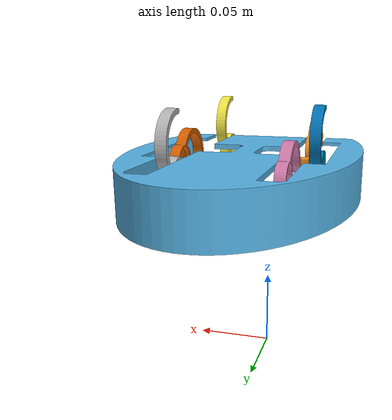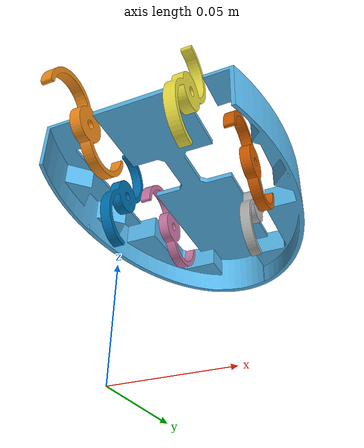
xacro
<?xml version="1.0"?>
<robot name="mobileRobot" xmlns:xacro="http://www.ros.org/wiki/xacro">

<xacro:property name="PI" value="3.1415926535897931"/>
<xacro:property name="bodymass" value="1"/>
<xacro:property name="legmass" value="0.5"/>
<xacro:include filename="$(find p8_gazebo)/robot_model/mobile/mobile.gazebo"/>
<xacro:property name="ixx" value="0.11"/>
<xacro:property name="ixy" value="0"/>
<xacro:property name="ixz" value="0"/>
<xacro:property name="iyy" value="0.11"/>
<xacro:property name="iyz" value="0"/>
<xacro:property name="izz" value="0.11"/>

<link name="world"/>
<joint name="to_world" type="floating">
    <parent link="world"/>
    <child link="body"/>
</joint>
<link name="body">
	<collision>
		<origin xyz="0 0 0.15" rpy="0 0 0" />
		<geometry><mesh filename="package://p8_gazebo/robot_model/mobile/top.dae"/></geometry>
	</collision>
	<visual>
		<origin xyz="0 0 0.15" rpy="0 0 0" />
		<geometry><mesh filename="package://p8_gazebo/robot_model/mobile/top.dae"/></geometry>
	</visual>
	<inertial>
		<origin xyz="0 0 0.15" rpy="0 0 0" />
		<mass value="${bodymass}"/>
		<inertia ixx="1.005" ixy="0.0" ixz="0.0" iyy="1.005" iyz="0.0" izz="1.005"/>
	</inertial>
</link>
<link name="left_leg_b"> <collision> <origin xyz="-0 -0 0" rpy="${PI/2} ${PI} 0"/>
		<geometry><mesh filename="package://p8_gazebo/robot_model/mobile/leftleg.dae"/></geometry>
	</collision>
	<visual>
		<origin xyz="-0 -0 0" rpy="${PI/2} ${PI} 0"/>
		<geometry><mesh filename="package://p8_gazebo/robot_model/mobile/leftleg.dae"/></geometry>
		<material name="orange"/>
	</visual>
	<inertial>
		<origin xyz="-0 -0 0" rpy="${PI/2} ${PI} 0"/>
		<mass value="${legmass}"/>
		<inertia ixx="${ixx}" ixy="${ixy}" ixz="${ixz}" iyy="${iyy}" iyz="${iyz}" izz="${izz}"/>
	</inertial>
</link>
<joint name="left_b" type="continuous">
	<parent link="body"/>
	<child link="left_leg_b"/>
	<origin xyz="-0.025 0 0.14" rpy="0 0 0"/>
	<axis xyz="1 0 0"/>
	<dynamics damping="0.7"/>
</joint>

<link name="right_leg_b">
	<collision>
		<origin xyz="0 -0 0" rpy="0 ${PI} 0"/>
		<geometry><mesh filename="package://p8_gazebo/robot_model/mobile/leftleg.dae"/></geometry>
	</collision>
	<visual>
		<origin xyz="0 -0 0" rpy="0 ${PI} 0"/>
		<geometry><mesh filename="package://p8_gazebo/robot_model/mobile/leftleg.dae"/></geometry>
	</visual>
	<inertial>
		<origin xyz="0 -0 0" rpy="0 ${PI} 0"/>
		<mass value="${legmass}"/>
		<inertia ixx="${ixx}" ixy="${ixy}" ixz="${ixz}" iyy="${iyy}" iyz="${iyz}" izz="${izz}"/>
	</inertial>
</link>
<joint name="right_b" type="continuous">
	<parent link="body"/>
	<child link="right_leg_b"/>
	<origin xyz="0.032 0 0.14" rpy="0 0 0"/>
	<axis xyz="1 0 0"/>
	<dynamics damping="0.7"/>
</joint>

<link name="left_leg_m">
	<collision>
		<origin xyz="-0 0 0" rpy="0 ${PI} 0"/>
		<geometry><mesh filename="package://p8_gazebo/robot_model/mobile/leftleg.dae"/></geometry>
	</collision>
	<visual>
		<origin xyz="-0 0 0" rpy="0 ${PI} 0"/>
		<geometry><mesh filename="package://p8_gazebo/robot_model/mobile/leftleg.dae"/></geometry>
	</visual>
	<inertial>
		<origin xyz="-0 0 0" rpy="0 ${PI} 0"/>
		<mass value="${legmass}"/>
		<inertia ixx="${ixx}" ixy="${ixy}" ixz="${ixz}" iyy="${iyy}" iyz="${iyz}" izz="${izz}"/>
	</inertial>
</link>
<joint name="left_m" type="continuous">
	<parent link="body"/>
	<child link="left_leg_m"/>
	<origin xyz="-0.037 0.061 0.14" rpy="0 0 0"/>
	<axis xyz="1 0 0"/>
	<dynamics damping="0.7"/>
</joint>

<link name="right_leg_m">
	<collision>
		<origin xyz="0 0 0" rpy="${PI/2} ${PI} 0"/>
		<geometry><mesh filename="package://p8_gazebo/robot_model/mobile/leftleg.dae"/></geometry>
	</collision>
	<visual>
		<origin xyz="0 0 0" rpy="${PI/2} ${PI} 0"/>
		<geometry><mesh filename="package://p8_gazebo/robot_model/mobile/leftleg.dae"/></geometry>
	</visual>
	<inertial>
		<origin xyz="0 0 0" rpy="${PI/2} ${PI} 0"/>
		<mass value="${legmass}"/>
		<inertia ixx="${ixx}" ixy="${ixy}" ixz="${ixz}" iyy="${iyy}" iyz="${iyz}" izz="${izz}"/>
	</inertial>
</link>
<joint name="right_m" type="continuous">
	<parent link="body"/>
	<child link="right_leg_m"/>
	<origin xyz="0.044 0.061 0.14" rpy="0 0 0"/>
	<axis xyz="1 0 0"/>
	<dynamics damping="0.7"/>
</joint>

<link name="left_leg_f">
	<collision>
		<origin xyz="-0 0 0" rpy="${PI/2} ${PI} 0"/>
		<geometry><mesh filename="package://p8_gazebo/robot_model/mobile/leftleg.dae"/></geometry>
	</collision>
	<visual>
		<origin xyz="-0 0 0" rpy="${PI/2} ${PI} 0"/>
		<geometry><mesh filename="package://p8_gazebo/robot_model/mobile/leftleg.dae"/></geometry>
	</visual>
	<inertial>
		<origin xyz="-0 0 0" rpy="${PI/2} ${PI} 0"/>
		<mass value="${legmass}"/>
		<inertia ixx="${ixx}" ixy="${ixy}" ixz="${ixz}" iyy="${iyy}" iyz="${iyz}" izz="${izz}"/>
	</inertial>
</link>
<joint name="left_f" type="continuous">
	<parent link="body"/>
	<child link="left_leg_f"/>
	<origin xyz="-0.025 0.101 0.14" rpy="0 0 0"/>
	<axis xyz="1 0 0"/>
	<dynamics damping="0.7"/>
</joint>

<link name="right_leg_f">
	<collision>
		<origin xyz="0 0 0" rpy="0 ${PI} 0"/>
		<geometry><mesh filename="package://p8_gazebo/robot_model/mobile/leftleg.dae"/></geometry>
	</collision>
	<visual>
		<origin xyz="0 0 0" rpy="0 ${PI} 0"/>
		<geometry><mesh filename="package://p8_gazebo/robot_model/mobile/leftleg.dae"/></geometry>
	</visual>
	<inertial>
		<origin xyz="0 0 0" rpy="0 ${PI} 0"/>
		<mass value="${legmass}"/>
		<inertia ixx="${ixx}" ixy="${ixy}" ixz="${ixz}" iyy="${iyy}" iyz="${iyz}" izz="${izz}"/>
	</inertial>
</link>
<joint name="right_f" type="continuous">
	<parent link="body"/>
	<child link="right_leg_f"/>
	<origin xyz="0.032 0.101 0.14" rpy="0 0 0"/>
	<axis xyz="1 0 0"/>
	<dynamics damping="0.7"/>
</joint>

<transmission name="trans_left_b">
	<type>transmission_interface/SimpleTransmission</type>
	<joint name="left_b">
		<hardwareInterface>EffortJointInterface</hardwareInterface>
	</joint>
	<actuator name="moter_left_b">
		<hardwareInterface>EffortJointInterface</hardwareInterface>
		<mechanicalReduction>1</mechanicalReduction>
	</actuator>
</transmission>

<transmission name="trans_left_m">
	<type>transmission_interface/SimpleTransmission</type>
	<joint name="left_m">
		<hardwareInterface>EffortJointInterface</hardwareInterface>
	</joint>
	<actuator name="moter_left_m">
		<hardwareInterface>EffortJointInterface</hardwareInterface>
		<mechanicalReduction>1</mechanicalReduction>
	</actuator>
</transmission>
<transmission name="trans_left_f">
	<type>transmission_interface/SimpleTransmission</type>
	<joint name="left_f">
		<hardwareInterface>EffortJointInterface</hardwareInterface>
	</joint>
	<actuator name="moter_left_f">
		<hardwareInterface>EffortJointInterface</hardwareInterface>
		<mechanicalReduction>1</mechanicalReduction>
	</actuator>
</transmission>

<transmission name="trans_right_b">
	<type>transmission_interface/SimpleTransmission</type>
	<joint name="right_b">
		<hardwareInterface>EffortJointInterface</hardwareInterface>
	</joint>
	<actuator name="moter_right_b">
		<hardwareInterface>EffortJointInterface</hardwareInterface>
		<mechanicalReduction>1</mechanicalReduction>
	</actuator>
</transmission>

<transmission name="trans_right_m">
	<type>transmission_interface/SimpleTransmission</type>
	<joint name="right_m">
		<hardwareInterface>EffortJointInterface</hardwareInterface>
	</joint>
	<actuator name="moter_right_m">
		<hardwareInterface>EffortJointInterface</hardwareInterface>
		<mechanicalReduction>1</mechanicalReduction>
	</actuator>
</transmission>
<transmission name="trans_right_f">
	<type>transmission_interface/SimpleTransmission</type>
	<joint name="right_f">
		<hardwareInterface>EffortJointInterface</hardwareInterface>
	</joint>
	<actuator name="moter_right_f">
		<hardwareInterface>EffortJointInterface</hardwareInterface>
		<mechanicalReduction>1</mechanicalReduction>
	</actuator>
</transmission>
</robot>
